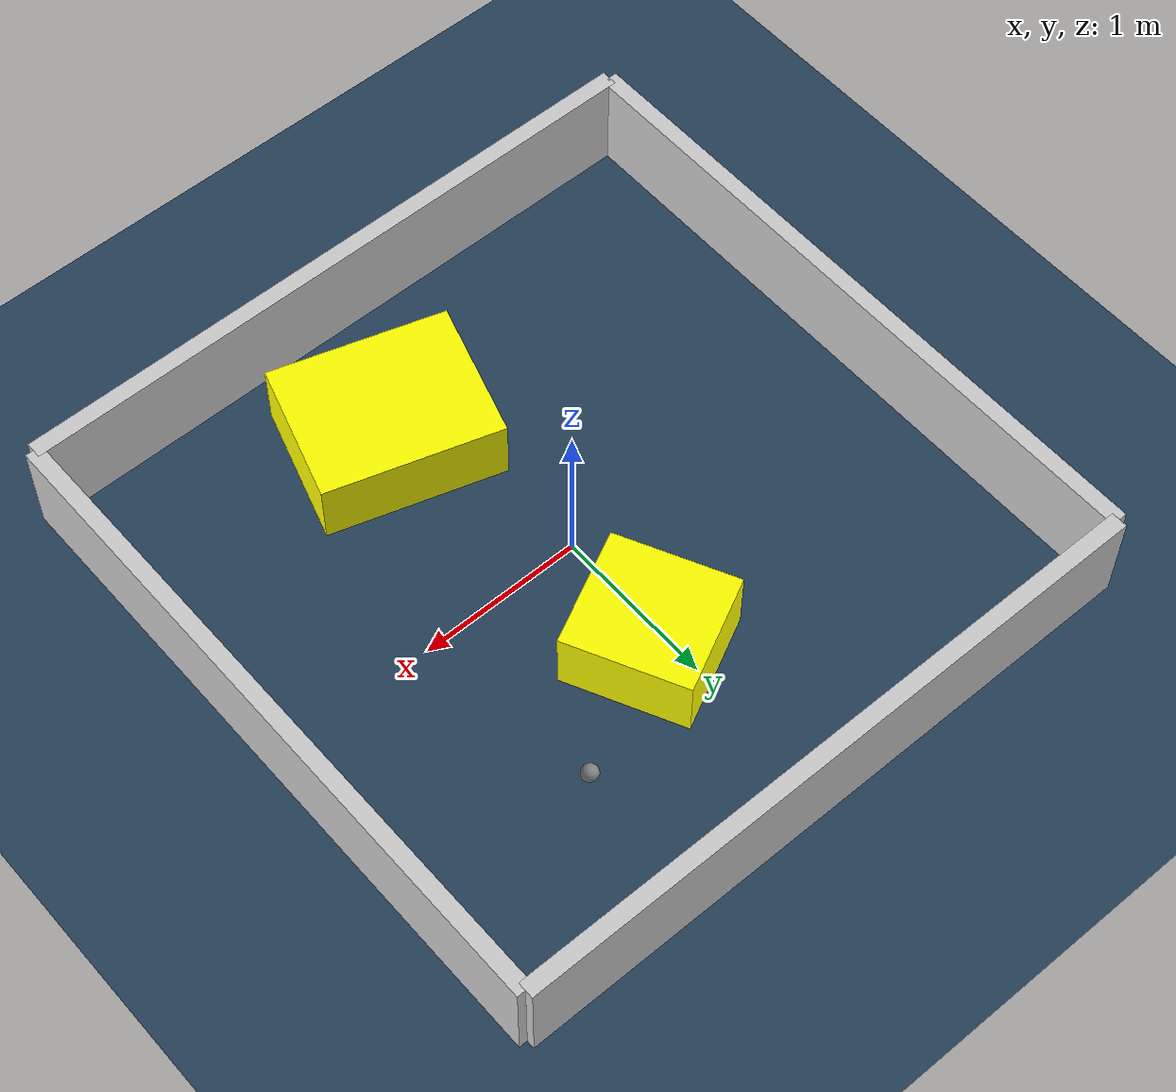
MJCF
<?xml version="1.0" ?>
<mujoco model="generated_environment">
  <option timestep="0.01" integrator="RK4" cone="elliptic"/>
  <default>
    <geom density="1"/>
  </default>
  <asset>
    <texture builtin="gradient" height="3072" rgb1="0.3 0.5 0.7" rgb2="0 0 0" type="skybox" width="512"/>
    <texture builtin="checker" height="300" mark="edge" markrgb="0.8 0.8 0.8" name="groundplane" rgb1="0.2 0.3 0.4" rgb2="0.1 0.2 0.3" type="2d" width="300"/>
    <material name="groundplane" reflectance="0.2" texrepeat="5 5" texture="groundplane" texuniform="true"/>
    <material name="robot" rgba="0.0 1.0 0.0 1"/>
  </asset>
  <worldbody>
    <light dir="0 0 -1" directional="true" pos="0 0 1.5"/>
    <geom condim="4" friction="1.0 0.005 0.001" material="groundplane" name="floor" size="0 0 0.05" type="plane"/>
    <body name="walls">
      <geom name="wall_1" condim="4" pos="-2.0 0.0 0.3" rgba="0.800000011920929 0.800000011920929 0.800000011920929 1.0" size="0.05 2.0 0.3" type="box"/>
      <geom name="wall_2" condim="4" pos="2.0 0.0 0.3" rgba="0.800000011920929 0.800000011920929 0.800000011920929 1.0" size="0.05 2.0 0.3" type="box"/>
      <geom name="wall_3" condim="4" pos="0.0 -2.0 0.3" rgba="0.800000011920929 0.800000011920929 0.800000011920929 1.0" size="2.0 0.05 0.3" type="box"/>
      <geom name="wall_4" condim="4" pos="0.0 2.0 0.3" rgba="0.800000011920929 0.800000011920929 0.800000011920929 1.0" size="2.0 0.05 0.3" type="box"/>
    </body>
    <body name="robot">
      <joint name="joint_x" type="slide" pos="0 0 0" axis="1 0 0"/>
      <joint name="joint_y" type="slide" pos="0 0 0" axis="0 1 0"/>
      <geom name="robot" type="sphere" pos="0.8899184509322176 1.1753584624205171 0.2" size="0.05" mass="5." friction="1.0 0.005 0.0001" condim="4"/>
      <site name="sensor_ball"/>
    </body>
    <body name="obstacle_1_movable">
      <geom name="obstacle_1_movable" condim="4" pos="0.10752883276246705 0.7489088202946061 0.2" euler="0 0 116.38925629658162" friction="1.0 0.005 0.001" rgba="1 1 0 1" size="0.3724619966701813 0.35702012400547056 0.2" type="box" mass="0.1"/>
      <joint type="free"/>
    </body>
    <body name="obstacle_2_movable">
      <geom name="obstacle_2_movable" condim="4" pos="0.3201608717962916 -1.1724446466152632 0.2" euler="0 0 252.91279825749479" friction="1.0 0.005 0.001" rgba="1 1 0 1" size="0.4321637206094377 0.5329271908586797 0.2" type="box" mass="0.1"/>
      <joint type="free"/>
    </body>
  </worldbody>
  <actuator>
    <motor name="actuator_x" joint="joint_x" gear="1" ctrlrange="-1 1"/>
    <motor name="actuator_y" joint="joint_y" gear="1" ctrlrange="-1 1"/>
  </actuator>
</mujoco>
